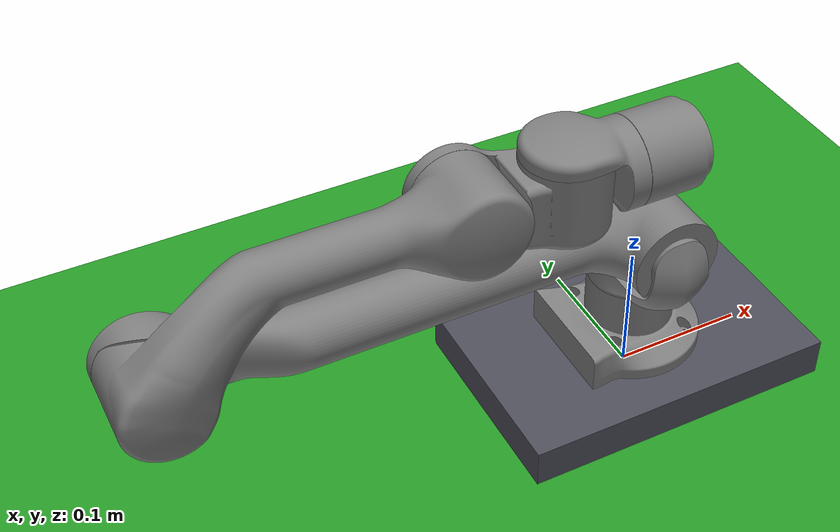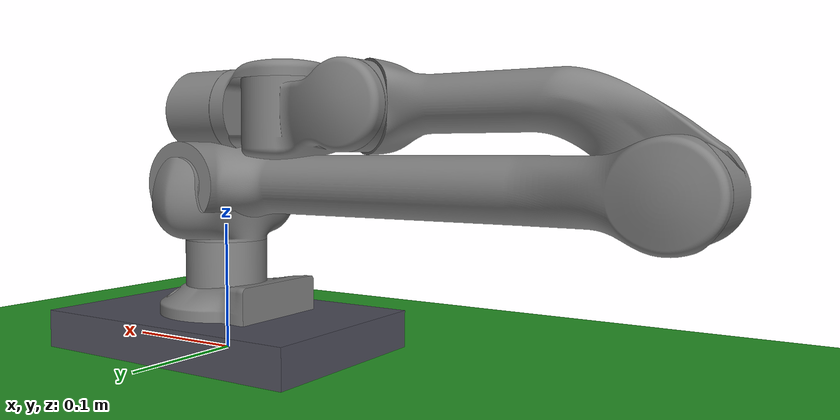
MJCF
<mujoco model="z1">
  <compiler angle="radian" meshdir="assets"/>

  <option integrator="implicitfast"/>
  <visual>
    <headlight diffuse="0.6 0.6 0.6" ambient="0.3 0.3 0.3" specular="0 0 0"/>
    <rgba haze="0.15 0.25 0.35 1"/>
    <global azimuth="160" elevation="-20"/>
  </visual>

  <default>
    <default class="z1">
      <joint damping="1" frictionloss="1"/>
      <general biastype="affine" gainprm="1000" biasprm="0 -1000 -100" forcerange="-30 30"/>
      <default class="visual">
        <geom type="mesh" group="2" contype="0" conaffinity="0"/>
      </default>
      <default class="collision">
        <geom type="cylinder" group="3" mass="0" density="0"/>
      </default>
    </default>
  </default>

  <asset>
    <texture type="skybox" builtin="gradient" rgb1="0.3 0.5 0.7" rgb2="0 0 0" width="512" height="3072"/>
    <mesh file="z1_Link00.stl"/>
    <mesh file="z1_Link01.stl"/>
    <mesh file="z1_Link02.stl"/>
    <mesh file="z1_Link03.stl"/>
    <mesh file="z1_Link04.stl"/>
    <mesh file="z1_Link05.stl"/>
    <mesh file="z1_Link06.stl"/>
    <!-- Classic green checker groundplane -->
    <texture type="2d" name="groundplane" builtin="checker" mark="edge" rgb1="0.2 0.8 0.2" rgb2="0.1 0.4 0.1"
      markrgb="0.8 0.8 0.8" width="300" height="300"/>
    <material name="groundplane" texture="groundplane" texuniform="true" texrepeat="5 5" reflectance="0.2"/>
  </asset>

  <worldbody>
    <light name="sun" pos="0 0 3" dir="0 0 -1" directional="true" diffuse="0.8 0.8 0.8" ambient="0.2 0.2 0.2" specular="0.1 0.1 0.1"/>
    <light name="fill" pos="2 2 1" diffuse="0.3 0.3 0.35" specular="0.05 0.05 0.05"/>
    <geom name="floor" type="plane" pos="0 0 0" size="0 0 0.05"
          material="groundplane" contype="1" conaffinity="1"/>
    <body name="base" pos="0 0 0.03">
      <joint name="float_base_joint" type="free"/>
      <!-- Floating base rectangular body (visual + collision) -->
      <geom name="base_visual" class="visual" type="box" size="0.12 0.08 0.015" pos="0 0 -0.015" rgba="0.3 0.3 0.35 1"/>
      <geom name="base_collision" class="collision" type="box" size="0.12 0.08 0.015" pos="0 0 -0.015"/>
      <body name="link00" childclass="z1">
      <inertial pos="-0.00334984 -0.00013615 0.0249584" quat="-0.00692194 0.682592 0.00133293 0.730766" mass="0.472475"
        diaginertia="0.000531375 0.000415207 0.000378658"/>
      <geom class="visual" mesh="z1_Link00"/>
      <geom size="0.0325 0.0255" pos="0 0 0.0255" class="collision"/>
      <body name="link01" pos="0 0 0.0585">
        <inertial pos="2.47e-06 -0.00025198 0.0231717" quat="0.708578 0.705633 0.000281462 -0.000355927" mass="0.673326"
          diaginertia="0.00128328 0.000839362 0.000719308"/>
        <joint name="joint1" axis="0 0 1" range="-2.61799 2.61799"/>
        <geom class="visual" mesh="z1_Link01"/>
        <body name="link02" pos="0 0 0.045">
          <inertial pos="-0.110126 0.00240029 0.00158266" quat="0.00748058 0.707092 -0.0114473 0.70699" mass="1.19132"
            diaginertia="0.0246612 0.0243113 0.00100468"/>
          <joint name="joint2" axis="0 1 0" range="0 2.96706" damping="2"/>
          <geom class="visual" mesh="z1_Link02"/>
          <geom size="0.0325 0.051" quat="1 1 0 0" class="collision"/>
          <geom size="0.0225 0.1175" pos="-0.1625 0 0" quat="1 0 1 0" class="collision"/>
          <geom size="0.0325 0.0255" pos="-0.35 0 0" quat="1 1 0 0" class="collision"/>
          <body name="link03" pos="-0.35 0 0">
            <inertial pos="0.106092 -0.00541815 0.0347638" quat="0.540557 0.443575 0.426319 0.573839" mass="0.839409"
              diaginertia="0.00954365 0.00938711 0.000558432"/>
            <joint name="joint3" axis="0 1 0" range="-2.87979 0"/>
            <geom class="visual" mesh="z1_Link03"/>
            <geom size="0.02 0.058" pos="0.128 0 0.055" quat="1 0 1 0" class="collision"/>
            <geom size="0.0325 0.0295" pos="0.2205 0 0.055" quat="0.5 -0.5 0.5 0.5" class="collision"/>
            <body name="link04" pos="0.218 0 0.057">
              <inertial pos="0.0436668 0.00364738 -0.00170192" quat="0.0390835 0.726445 -0.0526787 0.684087"
                mass="0.564046" diaginertia="0.000981656 0.00094053 0.000302655"/>
              <joint name="joint4" axis="0 1 0" range="-1.51844 1.51844"/>
              <geom class="visual" mesh="z1_Link04"/>
              <geom size="0.0325 0.0335" pos="0.072 0 0" class="collision"/>
              <body name="link05" pos="0.07 0 0">
                <inertial pos="0.0312153 0 0.00646316" quat="0.462205 0.535209 0.53785 0.45895" mass="0.389385"
                  diaginertia="0.000558961 0.000547317 0.000167332"/>
                <joint name="joint5" axis="0 0 1" range="-1.3439 1.3439"/>
                <geom class="visual" mesh="z1_Link05"/>
                <body name="link06" pos="0.0492 0 0">
                  <inertial pos="0.0241569 -0.00017355 -0.00143876" quat="0.998779 0.0457735 -0.00663717 0.0173548"
                    mass="0.288758" diaginertia="0.00018333 0.000147464 0.000146786"/>
                  <joint name="joint6" axis="1 0 0" range="-2.79253 2.79253"/>
                  <geom class="visual" mesh="z1_Link06"/>
                  <geom size="0.0325 0.0255" pos="0.0255 0 0" quat="1 0 1 0" class="collision"/>
                </body>
              </body>
            </body>
          </body>
        </body>
      </body>
    </body>
    </body>
  </worldbody>

  <actuator>
    <general class="z1" name="motor1" joint="joint1" ctrlrange="-2.61799 2.61799"/>
    <general class="z1" name="motor2" joint="joint2" ctrlrange="0 2.96706" forcerange="-60 60" gainprm="1500"
      biasprm="0 -1500 -150"/>
    <general class="z1" name="motor3" joint="joint3" ctrlrange="-2.87979 0"/>
    <general class="z1" name="motor4" joint="joint4" ctrlrange="-1.51844 1.51844"/>
    <general class="z1" name="motor5" joint="joint5" ctrlrange="-1.3439 1.3439"/>
    <general class="z1" name="motor6" joint="joint6" ctrlrange="-2.79253 2.79253"/>
  </actuator>

  <keyframe>
    <key name="home" qpos="0 0 0.03 1 0 0 0 0 0.785 -0.261 -0.523 0 0" ctrl="0 0.785 -0.261 -0.523 0 0"/>
  </keyframe>
</mujoco>
